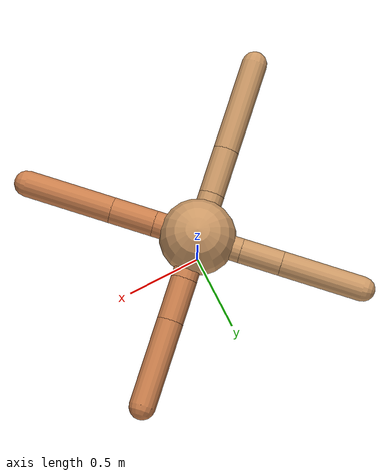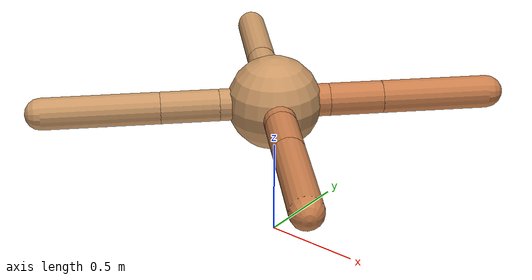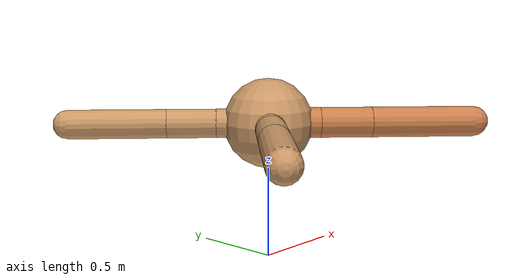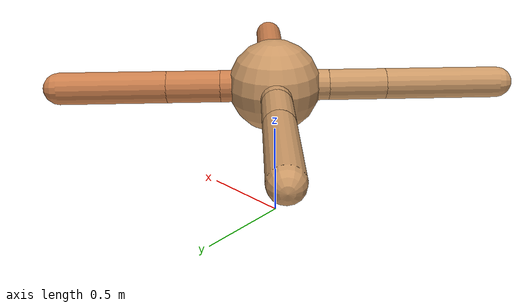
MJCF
<?xml version="1.0" ?>
<mujoco model="ant">

	<compiler angle="degree" coordinate="local" inertiafromgeom="true"/>

	<option integrator="RK4" timestep="0.01"/>

	<custom>

		<numeric data="0.0 0.0 0.55 1.0 0.0 0.0 0.0 0.0 1.0 0.0 -1.0 0.0 -1.0 0.0 1.0" name="init_qpos"/>

	</custom>

	<default>

		<joint armature="1" damping="1" limited="true"/>

		<geom conaffinity="0" condim="3" density="5.0" friction="1.5 0.1 0.1" margin="0.01" rgba="0.8 0.6 0.4 1"/>

	</default>

	<worldbody>

		<body name="torso" pos="0 0 0.75">

			<geom name="torso_geom" pos="0 0 0" size="0.24260716045085484" type="sphere"/>

			<!--joint armature="0" damping="0" limited="false" margin="0.01" name="root" pos="0 0 0" type="free"/-->

			<body name="front_left_leg" pos="0 0 0">

				<geom fromto="0 0 0 0.2 0.2 0" name="aux_1_geom" size="0.08366262004109051" type="capsule" rgba=".8 .5 .3 1"/>

				<body name="aux_1" pos="0.2 0.2 0">

					<joint axis="0 0 1" name="hip_1" pos="0.0 0.0 0.0" range="-40 40" type="hinge"/>

					<geom fromto="0 0 0 0.19509835424020439 0.19509835424020439 0" name="left_leg_geom" size="0.08366262004109051" type="capsule" rgba=".8 .5 .3 1"/>

					<body pos="0.19509835424020439 0.19509835424020439 0" name="front_left_foot">

						<joint axis="-1 1 0" name="ankle_1" pos="0.0 0.0 0.0" range="30 100" type="hinge"/>

						<geom fromto="0 0 0 0.39019670848040877 0.39019670848040877 0" name="left_ankle_geom" size="0.08366262004109051" type="capsule" rgba=".8 .5 .3 1"/>

					</body>

				</body>

			</body>

			<body name="front_right_leg" pos="0 0 0">

				<geom fromto="0 0 0 -0.2 0.2 0" name="aux_2_geom" size="0.07779682259462688" type="capsule"/>

				<body name="aux_2" pos="-0.2 0.2 0">

					<joint axis="0 0 1" name="hip_2" pos="0.0 0.0 0.0" range="-40 40" type="hinge"/>

					<geom fromto="0 0 0 -0.18656217688485421 0.18656217688485421 0" name="right_leg_geom" size="0.07779682259462688" type="capsule"/>

					<body pos="-0.18656217688485421 0.18656217688485421 0" name="front_right_foot">

						<joint axis="1 1 0" name="ankle_2" pos="0.0 0.0 0.0" range="-100 -30" type="hinge"/>

						<geom fromto="0 0 0 -0.37312435376970843 0.37312435376970843 0" name="right_ankle_geom" size="0.07779682259462688" type="capsule"/>

					</body>

				</body>

			</body>

			<body name="left_back_leg" pos="0 0 0">

				<geom fromto="0 0 0 -0.2 -0.2 0" name="aux_3_geom" size="0.0815413604618992" type="capsule"/>

				<body name="aux_3" pos="-0.2 -0.2 0">

					<joint axis="0 0 1" name="hip_3" pos="0.0 0.0 0.0" range="-40 40" type="hinge"/>

					<geom fromto="0 0 0 -0.21189850377152572 -0.21189850377152572 0" name="back_leg_geom" size="0.0815413604618992" type="capsule"/>

					<body pos="-0.21189850377152572 -0.21189850377152572 0" name="left_back_foot">

						<joint axis="-1 1 0" name="ankle_3" pos="0.0 0.0 0.0" range="-100 -30" type="hinge"/>

						<geom fromto="0 0 0 -0.42379700754305144 -0.42379700754305144 0" name="third_ankle_geom" size="0.0815413604618992" type="capsule"/>

					</body>

				</body>

			</body>

			<body name="right_back_leg" pos="0 0 0">

				<geom fromto="0 0 0 0.2 -0.2 0" name="aux_4_geom" size="0.082253927134436" type="capsule" rgba=".8 .5 .3 1"/>

				<body name="aux_4" pos="0.2 -0.2 0">

					<joint axis="0 0 1" name="hip_4" pos="0.0 0.0 0.0" range="-40 40" type="hinge"/>

					<geom fromto="0 0 0 0.19828001435695308 -0.19828001435695308 0" name="rightback_leg_geom" size="0.082253927134436" type="capsule" rgba=".8 .5 .3 1"/>

					<body pos="0.19828001435695308 -0.19828001435695308 0" name="right_back_foot">

						<joint axis="1 1 0" name="ankle_4" pos="0.0 0.0 0.0" range="30 100" type="hinge"/>

						<geom fromto="0 0 0 0.39656002871390617 -0.39656002871390617 0" name="fourth_ankle_geom" size="0.082253927134436" type="capsule" rgba=".8 .5 .3 1"/>

					</body>

				</body>

			</body>

		</body>

	</worldbody>

	<actuator>

		<motor ctrllimited="true" ctrlrange="-1.0 1.0" joint="hip_4" gear="150"/>

		<motor ctrllimited="true" ctrlrange="-1.0 1.0" joint="ankle_4" gear="150"/>

		<motor ctrllimited="true" ctrlrange="-1.0 1.0" joint="hip_1" gear="150"/>

		<motor ctrllimited="true" ctrlrange="-1.0 1.0" joint="ankle_1" gear="150"/>

		<motor ctrllimited="true" ctrlrange="-1.0 1.0" joint="hip_2" gear="150"/>

		<motor ctrllimited="true" ctrlrange="-1.0 1.0" joint="ankle_2" gear="150"/>

		<motor ctrllimited="true" ctrlrange="-1.0 1.0" joint="hip_3" gear="150"/>

		<motor ctrllimited="true" ctrlrange="-1.0 1.0" joint="ankle_3" gear="150"/>

	</actuator>

</mujoco>
